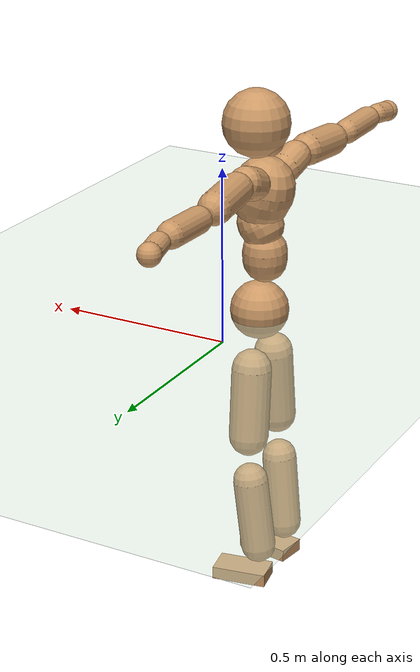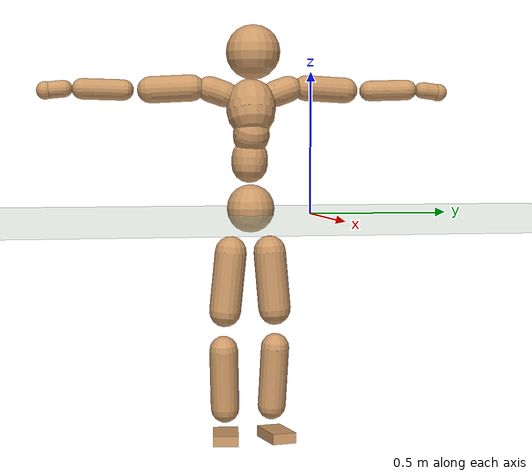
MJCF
<mujoco model="humanoid">
  <compiler coordinate="local"/>
  <default>
    <joint damping="0.0" armature="0.01" stiffness="0.0" limited="true"/>
    <geom conaffinity="1" condim="3" contype="7" margin="0.001" rgba="0.8 0.6 .4 1"/>
  </default>
  <asset>
    <texture type="skybox" builtin="gradient" rgb1=".4 .5 .6" rgb2="0 0 0" width="100" height="100"/>
    <texture builtin="flat" height="1278" mark="cross" markrgb="1 1 1" name="texgeom" random="0.01" rgb1="0.8 0.6 0.4" rgb2="0.8 0.6 0.4" type="cube" width="127"/>
    <texture builtin="checker" height="100" name="texplane" rgb1="0 0 0" rgb2="0.8 0.8 0.8" type="2d" width="100"/>
    <material name="MatPlane" reflectance="0.5" shininess="1" specular="1" texrepeat="60 60" texture="texplane"/>
    <material name="geom" texture="texgeom" texuniform="true"/>
  </asset>
  <worldbody>
    <light cutoff="100" diffuse="1 1 1" dir="-0 0 -1.3" directional="true" exponent="1" pos="0 0 1.3" specular=".1 .1 .1"/>
    <geom conaffinity="1" condim="3" name="floor" pos="0 0 0" rgba="0.8 0.9 0.8 1" size="100 100 .2" type="plane" material="MatPlane"/>
    <body name="Pelvis" pos="-0.0017 -0.2165 0.0203">
      <freejoint name="Pelvis"/>
      <geom type="sphere" contype="1" conaffinity="1" density="500" size="0.0849" pos="0.0000 0.0000 0.0000" name="Pelvis"/>
      <body name="L_Hip" pos="-0.0126 0.0654 -0.0867">
        <joint name="L_Hip_x" type="hinge" pos="0 0 0" axis="1 0 0" stiffness="800" damping="80" armature="0.02" range="-180.0000 180.0000"/>
        <joint name="L_Hip_y" type="hinge" pos="0 0 0" axis="0 1 0" stiffness="800" damping="80" armature="0.02" range="-180.0000 180.0000"/>
        <joint name="L_Hip_z" type="hinge" pos="0 0 0" axis="0 0 1" stiffness="800" damping="80" armature="0.02" range="-180.0000 180.0000"/>
        <geom type="capsule" contype="1" conaffinity="1" density="500" fromto="-0.0004 0.0060 -0.0687 -0.0016 0.0239 -0.2749" size="0.0573" name="L_Hip"/>
        <body name="L_Knee" pos="-0.002 0.0299 -0.3436">
          <joint name="L_Knee_x" type="hinge" pos="0 0 0" axis="1 0 0" stiffness="800" damping="80" armature="0.02" range="-180.0000 180.0000"/>
          <joint name="L_Knee_y" type="hinge" pos="0 0 0" axis="0 1 0" stiffness="800" damping="80" armature="0.02" range="-180.0000 180.0000"/>
          <joint name="L_Knee_z" type="hinge" pos="0 0 0" axis="0 0 1" stiffness="800" damping="80" armature="0.02" range="-180.0000 180.0000"/>
          <geom type="capsule" contype="1" conaffinity="1" density="500" fromto="-0.0080 -0.0024 -0.0716 -0.0318 -0.0097 -0.2865" size="0.0507" name="L_Knee"/>
          <body name="L_Ankle" pos="-0.0398 -0.0121 -0.3581">
            <joint name="L_Ankle_x" type="hinge" pos="0 0 0" axis="1 0 0" stiffness="800" damping="80" armature="0.02" range="-180.0000 180.0000"/>
            <joint name="L_Ankle_y" type="hinge" pos="0 0 0" axis="0 1 0" stiffness="800" damping="80" armature="0.02" range="-180.0000 180.0000"/>
            <joint name="L_Ankle_z" type="hinge" pos="0 0 0" axis="0 0 1" stiffness="800" damping="80" armature="0.02" range="-180.0000 180.0000"/>
            <geom type="box" contype="1" conaffinity="1" density="500" pos="0.0559 0.0098 -0.0255" size="0.0804 0.0438 0.0189" quat="0.9962 0.0000 0.0000 0.0867" name="L_Ankle"/>
            <body name="L_Toe" pos="0.1119 0.0196 -0.051">
              <joint name="L_Toe_x" type="hinge" pos="0 0 0" axis="1 0 0" stiffness="500" damping="50" armature="0.02" range="-180.0000 180.0000"/>
              <joint name="L_Toe_y" type="hinge" pos="0 0 0" axis="0 1 0" stiffness="500" damping="50" armature="0.02" range="-180.0000 180.0000"/>
              <joint name="L_Toe_z" type="hinge" pos="0 0 0" axis="0 0 1" stiffness="500" damping="50" armature="0.02" range="-180.0000 180.0000"/>
              <geom type="box" contype="1" conaffinity="1" density="500" pos="0.0000 0.0000 0.0252" size="0.0009 0.0022 0.0009" quat="0.9956 0.0000 0.0000 0.0937" name="L_Toe"/>
            </body>
          </body>
        </body>
      </body>
      <body name="R_Hip" pos="-0.0096 -0.0629 -0.0856">
        <joint name="R_Hip_x" type="hinge" pos="0 0 0" axis="1 0 0" stiffness="800" damping="80" armature="0.02" range="-180.0000 180.0000"/>
        <joint name="R_Hip_y" type="hinge" pos="0 0 0" axis="0 1 0" stiffness="800" damping="80" armature="0.02" range="-180.0000 180.0000"/>
        <joint name="R_Hip_z" type="hinge" pos="0 0 0" axis="0 0 1" stiffness="800" damping="80" armature="0.02" range="-180.0000 180.0000"/>
        <geom type="capsule" contype="1" conaffinity="1" density="500" fromto="-0.0010 -0.0068 -0.0701 -0.0041 -0.0272 -0.2805" size="0.0567" name="R_Hip"/>
        <body name="R_Knee" pos="-0.0051 -0.034 -0.3506">
          <joint name="R_Knee_x" type="hinge" pos="0 0 0" axis="1 0 0" stiffness="800" damping="80" armature="0.02" range="-180.0000 180.0000"/>
          <joint name="R_Knee_y" type="hinge" pos="0 0 0" axis="0 1 0" stiffness="800" damping="80" armature="0.02" range="-180.0000 180.0000"/>
          <joint name="R_Knee_z" type="hinge" pos="0 0 0" axis="0 0 1" stiffness="800" damping="80" armature="0.02" range="-180.0000 180.0000"/>
          <geom type="capsule" contype="1" conaffinity="1" density="500" fromto="-0.0076 0.0029 -0.0715 -0.0306 0.0115 -0.2859" size="0.051" name="R_Knee"/>
          <body name="R_Ankle" pos="-0.0382 0.0143 -0.3573">
            <joint name="R_Ankle_x" type="hinge" pos="0 0 0" axis="1 0 0" stiffness="800" damping="80" armature="0.02" range="-180.0000 180.0000"/>
            <joint name="R_Ankle_y" type="hinge" pos="0 0 0" axis="0 1 0" stiffness="800" damping="80" armature="0.02" range="-180.0000 180.0000"/>
            <joint name="R_Ankle_z" type="hinge" pos="0 0 0" axis="0 0 1" stiffness="800" damping="80" armature="0.02" range="-180.0000 180.0000"/>
            <geom type="box" contype="1" conaffinity="1" density="500" pos="0.0575 -0.0089 -0.0215" size="0.0811 0.0449 0.0185" quat="0.9971 0.0000 0.0000 -0.0765" name="R_Ankle"/>
            <body name="R_Toe" pos="0.115 -0.0177 -0.043">
              <joint name="R_Toe_x" type="hinge" pos="0 0 0" axis="1 0 0" stiffness="500" damping="50" armature="0.02" range="-180.0000 180.0000"/>
              <joint name="R_Toe_y" type="hinge" pos="0 0 0" axis="0 1 0" stiffness="500" damping="50" armature="0.02" range="-180.0000 180.0000"/>
              <joint name="R_Toe_z" type="hinge" pos="0 0 0" axis="0 0 1" stiffness="500" damping="50" armature="0.02" range="-180.0000 180.0000"/>
              <geom type="box" contype="1" conaffinity="1" density="500" pos="0.0000 0.0000 0.0237" size="0.0009 0.0022 0.001" quat="0.9978 0.0000 0.0000 -0.0668" name="R_Toe"/>
            </body>
          </body>
        </body>
      </body>
      <body name="Torso" pos="-0.0156 -0.0027 0.0999">
        <joint name="Torso_x" type="hinge" pos="0 0 0" axis="1 0 0" stiffness="1000" damping="100" armature="0.02" range="-180.0000 180.0000"/>
        <joint name="Torso_y" type="hinge" pos="0 0 0" axis="0 1 0" stiffness="1000" damping="100" armature="0.02" range="-180.0000 180.0000"/>
        <joint name="Torso_z" type="hinge" pos="0 0 0" axis="0 0 1" stiffness="1000" damping="100" armature="0.02" range="-180.0000 180.0000"/>
        <geom type="capsule" contype="1" conaffinity="1" density="500" fromto="0.0004 0.0025 0.0811 0.0003 0.0017 0.0541" size="0.0641" name="Torso"/>
        <body name="Spine" pos="0.0007 0.0042 0.1351">
          <joint name="Spine_x" type="hinge" pos="0 0 0" axis="1 0 0" stiffness="1000" damping="100" armature="0.02" range="-180.0000 180.0000"/>
          <joint name="Spine_y" type="hinge" pos="0 0 0" axis="0 1 0" stiffness="1000" damping="100" armature="0.02" range="-180.0000 180.0000"/>
          <joint name="Spine_z" type="hinge" pos="0 0 0" axis="0 0 1" stiffness="1000" damping="100" armature="0.02" range="-180.0000 180.0000"/>
          <geom type="capsule" contype="1" conaffinity="1" density="500" fromto="0.0155 0.0014 0.0296 0.0103 0.0010 0.0197" size="0.0648" name="Spine"/>
          <body name="Chest" pos="0.0258 0.0024 0.0493">
            <joint name="Chest_x" type="hinge" pos="0 0 0" axis="1 0 0" stiffness="1000" damping="100" armature="0.02" range="-180.0000 180.0000"/>
            <joint name="Chest_y" type="hinge" pos="0 0 0" axis="0 1 0" stiffness="1000" damping="100" armature="0.02" range="-180.0000 180.0000"/>
            <joint name="Chest_z" type="hinge" pos="0 0 0" axis="0 0 1" stiffness="1000" damping="100" armature="0.02" range="-180.0000 180.0000"/>
            <geom type="capsule" contype="1" conaffinity="1" density="500" fromto="-0.0247 -0.0007 0.0855 -0.0165 -0.0005 0.0570" size="0.0872" name="Chest"/>
            <body name="Neck" pos="-0.0487 -0.002 0.2023">
              <joint name="Neck_x" type="hinge" pos="0 0 0" axis="1 0 0" stiffness="500" damping="50" armature="0.02" range="-180.0000 180.0000"/>
              <joint name="Neck_y" type="hinge" pos="0 0 0" axis="0 1 0" stiffness="500" damping="50" armature="0.02" range="-180.0000 180.0000"/>
              <joint name="Neck_z" type="hinge" pos="0 0 0" axis="0 0 1" stiffness="500" damping="50" armature="0.02" range="-180.0000 180.0000"/>
              <geom type="capsule" contype="1" conaffinity="1" density="500" fromto="0.0097 0.0010 0.0124 0.0389 0.0038 0.0498" size="0.0393" name="Neck"/>
              <body name="Head" pos="0.0487 0.0048 0.0622">
                <joint name="Head_x" type="hinge" pos="0 0 0" axis="1 0 0" stiffness="500" damping="50" armature="0.02" range="-180.0000 180.0000"/>
                <joint name="Head_y" type="hinge" pos="0 0 0" axis="0 1 0" stiffness="500" damping="50" armature="0.02" range="-180.0000 180.0000"/>
                <joint name="Head_z" type="hinge" pos="0 0 0" axis="0 0 1" stiffness="500" damping="50" armature="0.02" range="-180.0000 180.0000"/>
                <geom type="sphere" contype="1" conaffinity="1" density="500" size="0.0960" pos="0.0000 0.0000 0.0000" name="Head"/>
              </body>
            </body>
            <body name="L_Thorax" pos="-0.0351 0.0708 0.1139">
              <joint name="L_Thorax_x" type="hinge" pos="0 0 0" axis="1 0 0" stiffness="500" damping="50" armature="0.02" range="-180.0000 180.0000"/>
              <joint name="L_Thorax_y" type="hinge" pos="0 0 0" axis="0 1 0" stiffness="500" damping="50" armature="0.02" range="-180.0000 180.0000"/>
              <joint name="L_Thorax_z" type="hinge" pos="0 0 0" axis="0 0 1" stiffness="500" damping="50" armature="0.02" range="-180.0000 180.0000"/>
              <geom type="capsule" contype="1" conaffinity="1" density="500" fromto="-0.0009 0.0168 0.0060 -0.0038 0.0671 0.0239" size="0.0467" name="L_Thorax"/>
              <body name="L_Shoulder" pos="-0.0047 0.0839 0.0299">
                <joint name="L_Shoulder_x" type="hinge" pos="0 0 0" axis="1 0 0" stiffness="500" damping="50" armature="0.02" range="-720.0000 720.0000"/>
                <joint name="L_Shoulder_y" type="hinge" pos="0 0 0" axis="0 1 0" stiffness="500" damping="50" armature="0.02" range="-720.0000 720.0000"/>
                <joint name="L_Shoulder_z" type="hinge" pos="0 0 0" axis="0 0 1" stiffness="500" damping="50" armature="0.02" range="-720.0000 720.0000"/>
                <geom type="capsule" contype="1" conaffinity="1" density="500" fromto="-0.0051 0.0485 -0.0023 -0.0202 0.1940 -0.0091" size="0.046" name="L_Shoulder"/>
                <body name="L_Elbow" pos="-0.0253 0.2425 -0.0114">
                  <joint name="L_Elbow_x" type="hinge" pos="0 0 0" axis="1 0 0" stiffness="500" damping="50" armature="0.02" range="-720.0000 720.0000"/>
                  <joint name="L_Elbow_y" type="hinge" pos="0 0 0" axis="0 1 0" stiffness="500" damping="50" armature="0.02" range="-720.0000 720.0000"/>
                  <joint name="L_Elbow_z" type="hinge" pos="0 0 0" axis="0 0 1" stiffness="500" damping="50" armature="0.02" range="-720.0000 720.0000"/>
                  <geom type="capsule" contype="1" conaffinity="1" density="500" fromto="-0.0001 0.0462 0.0014 -0.0003 0.1847 0.0057" size="0.0367" name="L_Elbow"/>
                  <body name="L_Wrist" pos="-0.0003 0.2308 0.0072">
                    <joint name="L_Wrist_x" type="hinge" pos="0 0 0" axis="1 0 0" stiffness="300" damping="30" armature="0.02" range="-180.0000 180.0000"/>
                    <joint name="L_Wrist_y" type="hinge" pos="0 0 0" axis="0 1 0" stiffness="300" damping="30" armature="0.02" range="-180.0000 180.0000"/>
                    <joint name="L_Wrist_z" type="hinge" pos="0 0 0" axis="0 0 1" stiffness="300" damping="30" armature="0.02" range="-180.0000 180.0000"/>
                    <geom type="capsule" contype="1" conaffinity="1" density="500" fromto="-0.0026 0.0157 -0.0019 -0.0104 0.0628 -0.0076" size="0.0295" name="L_Wrist"/>
                    <body name="L_Hand" pos="-0.013 0.0785 -0.0095">
                      <joint name="L_Hand_x" type="hinge" pos="0 0 0" axis="1 0 0" stiffness="300" damping="30" armature="0.02" range="-180.0000 180.0000"/>
                      <joint name="L_Hand_y" type="hinge" pos="0 0 0" axis="0 1 0" stiffness="300" damping="30" armature="0.02" range="-180.0000 180.0000"/>
                      <joint name="L_Hand_z" type="hinge" pos="0 0 0" axis="0 0 1" stiffness="300" damping="30" armature="0.02" range="-180.0000 180.0000"/>
                      <geom type="sphere" contype="1" conaffinity="1" density="500" size="0.0316" pos="0.0000 0.0000 0.0000" name="L_Hand"/>
                    </body>
                  </body>
                </body>
              </body>
            </body>
            <body name="R_Thorax" pos="-0.0398 -0.0725 0.1113">
              <joint name="R_Thorax_x" type="hinge" pos="0 0 0" axis="1 0 0" stiffness="500" damping="50" armature="0.02" range="-180.0000 180.0000"/>
              <joint name="R_Thorax_y" type="hinge" pos="0 0 0" axis="0 1 0" stiffness="500" damping="50" armature="0.02" range="-180.0000 180.0000"/>
              <joint name="R_Thorax_z" type="hinge" pos="0 0 0" axis="0 0 1" stiffness="500" damping="50" armature="0.02" range="-180.0000 180.0000"/>
              <geom type="capsule" contype="1" conaffinity="1" density="500" fromto="-0.0017 -0.0177 0.0062 -0.0067 -0.0707 0.0246" size="0.0458" name="R_Thorax"/>
              <body name="R_Shoulder" pos="-0.0084 -0.0884 0.0308">
                <joint name="R_Shoulder_x" type="hinge" pos="0 0 0" axis="1 0 0" stiffness="500" damping="50" armature="0.02" range="-720.0000 720.0000"/>
                <joint name="R_Shoulder_y" type="hinge" pos="0 0 0" axis="0 1 0" stiffness="500" damping="50" armature="0.02" range="-720.0000 720.0000"/>
                <joint name="R_Shoulder_z" type="hinge" pos="0 0 0" axis="0 0 1" stiffness="500" damping="50" armature="0.02" range="-720.0000 720.0000"/>
                <geom type="capsule" contype="1" conaffinity="1" density="500" fromto="-0.0033 -0.0476 -0.0024 -0.0132 -0.1903 -0.0096" size="0.0473" name="R_Shoulder"/>
                <body name="R_Elbow" pos="-0.0165 -0.2378 -0.0121">
                  <joint name="R_Elbow_x" type="hinge" pos="0 0 0" axis="1 0 0" stiffness="500" damping="50" armature="0.02" range="-720.0000 720.0000"/>
                  <joint name="R_Elbow_y" type="hinge" pos="0 0 0" axis="0 1 0" stiffness="500" damping="50" armature="0.02" range="-720.0000 720.0000"/>
                  <joint name="R_Elbow_z" type="hinge" pos="0 0 0" axis="0 0 1" stiffness="500" damping="50" armature="0.02" range="-720.0000 720.0000"/>
                  <geom type="capsule" contype="1" conaffinity="1" density="500" fromto="-0.0009 -0.0475 0.0012 -0.0037 -0.1899 0.0047" size="0.0367" name="R_Elbow"/>
                  <body name="R_Wrist" pos="-0.0047 -0.2374 0.0059">
                    <joint name="R_Wrist_x" type="hinge" pos="0 0 0" axis="1 0 0" stiffness="300" damping="30" armature="0.02" range="-180.0000 180.0000"/>
                    <joint name="R_Wrist_y" type="hinge" pos="0 0 0" axis="0 1 0" stiffness="300" damping="30" armature="0.02" range="-180.0000 180.0000"/>
                    <joint name="R_Wrist_z" type="hinge" pos="0 0 0" axis="0 0 1" stiffness="300" damping="30" armature="0.02" range="-180.0000 180.0000"/>
                    <geom type="capsule" contype="1" conaffinity="1" density="500" fromto="-0.0020 -0.0158 -0.0014 -0.0081 -0.0634 -0.0057" size="0.0302" name="R_Wrist"/>
                    <body name="R_Hand" pos="-0.0102 -0.0792 -0.0071">
                      <joint name="R_Hand_x" type="hinge" pos="0 0 0" axis="1 0 0" stiffness="300" damping="30" armature="0.02" range="-180.0000 180.0000"/>
                      <joint name="R_Hand_y" type="hinge" pos="0 0 0" axis="0 1 0" stiffness="300" damping="30" armature="0.02" range="-180.0000 180.0000"/>
                      <joint name="R_Hand_z" type="hinge" pos="0 0 0" axis="0 0 1" stiffness="300" damping="30" armature="0.02" range="-180.0000 180.0000"/>
                      <geom type="sphere" contype="1" conaffinity="1" density="500" size="0.0318" pos="0.0000 0.0000 0.0000" name="R_Hand"/>
                    </body>
                  </body>
                </body>
              </body>
            </body>
          </body>
        </body>
      </body>
    </body>
  </worldbody>
  <actuator>
    <motor name="L_Hip_x" joint="L_Hip_x" gear="500"/>
    <motor name="L_Hip_y" joint="L_Hip_y" gear="500"/>
    <motor name="L_Hip_z" joint="L_Hip_z" gear="500"/>
    <motor name="L_Knee_x" joint="L_Knee_x" gear="500"/>
    <motor name="L_Knee_y" joint="L_Knee_y" gear="500"/>
    <motor name="L_Knee_z" joint="L_Knee_z" gear="500"/>
    <motor name="L_Ankle_x" joint="L_Ankle_x" gear="500"/>
    <motor name="L_Ankle_y" joint="L_Ankle_y" gear="500"/>
    <motor name="L_Ankle_z" joint="L_Ankle_z" gear="500"/>
    <motor name="L_Toe_x" joint="L_Toe_x" gear="500"/>
    <motor name="L_Toe_y" joint="L_Toe_y" gear="500"/>
    <motor name="L_Toe_z" joint="L_Toe_z" gear="500"/>
    <motor name="R_Hip_x" joint="R_Hip_x" gear="500"/>
    <motor name="R_Hip_y" joint="R_Hip_y" gear="500"/>
    <motor name="R_Hip_z" joint="R_Hip_z" gear="500"/>
    <motor name="R_Knee_x" joint="R_Knee_x" gear="500"/>
    <motor name="R_Knee_y" joint="R_Knee_y" gear="500"/>
    <motor name="R_Knee_z" joint="R_Knee_z" gear="500"/>
    <motor name="R_Ankle_x" joint="R_Ankle_x" gear="500"/>
    <motor name="R_Ankle_y" joint="R_Ankle_y" gear="500"/>
    <motor name="R_Ankle_z" joint="R_Ankle_z" gear="500"/>
    <motor name="R_Toe_x" joint="R_Toe_x" gear="500"/>
    <motor name="R_Toe_y" joint="R_Toe_y" gear="500"/>
    <motor name="R_Toe_z" joint="R_Toe_z" gear="500"/>
    <motor name="Torso_x" joint="Torso_x" gear="500"/>
    <motor name="Torso_y" joint="Torso_y" gear="500"/>
    <motor name="Torso_z" joint="Torso_z" gear="500"/>
    <motor name="Spine_x" joint="Spine_x" gear="500"/>
    <motor name="Spine_y" joint="Spine_y" gear="500"/>
    <motor name="Spine_z" joint="Spine_z" gear="500"/>
    <motor name="Chest_x" joint="Chest_x" gear="500"/>
    <motor name="Chest_y" joint="Chest_y" gear="500"/>
    <motor name="Chest_z" joint="Chest_z" gear="500"/>
    <motor name="Neck_x" joint="Neck_x" gear="500"/>
    <motor name="Neck_y" joint="Neck_y" gear="500"/>
    <motor name="Neck_z" joint="Neck_z" gear="500"/>
    <motor name="Head_x" joint="Head_x" gear="500"/>
    <motor name="Head_y" joint="Head_y" gear="500"/>
    <motor name="Head_z" joint="Head_z" gear="500"/>
    <motor name="L_Thorax_x" joint="L_Thorax_x" gear="500"/>
    <motor name="L_Thorax_y" joint="L_Thorax_y" gear="500"/>
    <motor name="L_Thorax_z" joint="L_Thorax_z" gear="500"/>
    <motor name="L_Shoulder_x" joint="L_Shoulder_x" gear="500"/>
    <motor name="L_Shoulder_y" joint="L_Shoulder_y" gear="500"/>
    <motor name="L_Shoulder_z" joint="L_Shoulder_z" gear="500"/>
    <motor name="L_Elbow_x" joint="L_Elbow_x" gear="500"/>
    <motor name="L_Elbow_y" joint="L_Elbow_y" gear="500"/>
    <motor name="L_Elbow_z" joint="L_Elbow_z" gear="500"/>
    <motor name="L_Wrist_x" joint="L_Wrist_x" gear="500"/>
    <motor name="L_Wrist_y" joint="L_Wrist_y" gear="500"/>
    <motor name="L_Wrist_z" joint="L_Wrist_z" gear="500"/>
    <motor name="L_Hand_x" joint="L_Hand_x" gear="500"/>
    <motor name="L_Hand_y" joint="L_Hand_y" gear="500"/>
    <motor name="L_Hand_z" joint="L_Hand_z" gear="500"/>
    <motor name="R_Thorax_x" joint="R_Thorax_x" gear="500"/>
    <motor name="R_Thorax_y" joint="R_Thorax_y" gear="500"/>
    <motor name="R_Thorax_z" joint="R_Thorax_z" gear="500"/>
    <motor name="R_Shoulder_x" joint="R_Shoulder_x" gear="500"/>
    <motor name="R_Shoulder_y" joint="R_Shoulder_y" gear="500"/>
    <motor name="R_Shoulder_z" joint="R_Shoulder_z" gear="500"/>
    <motor name="R_Elbow_x" joint="R_Elbow_x" gear="500"/>
    <motor name="R_Elbow_y" joint="R_Elbow_y" gear="500"/>
    <motor name="R_Elbow_z" joint="R_Elbow_z" gear="500"/>
    <motor name="R_Wrist_x" joint="R_Wrist_x" gear="500"/>
    <motor name="R_Wrist_y" joint="R_Wrist_y" gear="500"/>
    <motor name="R_Wrist_z" joint="R_Wrist_z" gear="500"/>
    <motor name="R_Hand_x" joint="R_Hand_x" gear="500"/>
    <motor name="R_Hand_y" joint="R_Hand_y" gear="500"/>
    <motor name="R_Hand_z" joint="R_Hand_z" gear="500"/>
  </actuator>
  <contact>
    <exclude body1="Torso" body2="Chest"/>
    <exclude body1="Head" body2="Chest"/>
    <exclude body1="R_Knee" body2="R_Toe"/>
    <exclude body1="R_Knee" body2="L_Ankle"/>
    <exclude body1="R_Knee" body2="L_Toe"/>
    <exclude body1="L_Knee" body2="L_Toe"/>
    <exclude body1="L_Knee" body2="R_Ankle"/>
    <exclude body1="L_Knee" body2="R_Toe"/>
    <exclude body1="L_Shoulder" body2="Chest"/>
    <exclude body1="R_Shoulder" body2="Chest"/>
  </contact>
  <sensor/>
  <size njmax="700" nconmax="700"/>
</mujoco>
